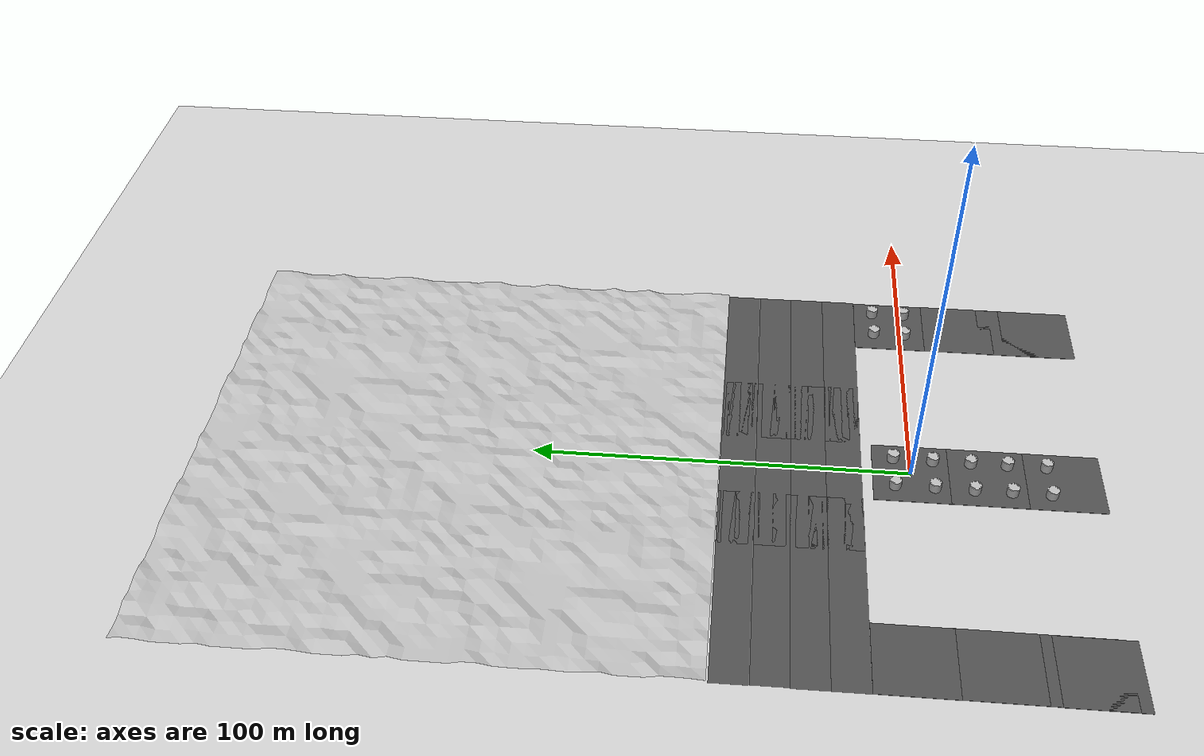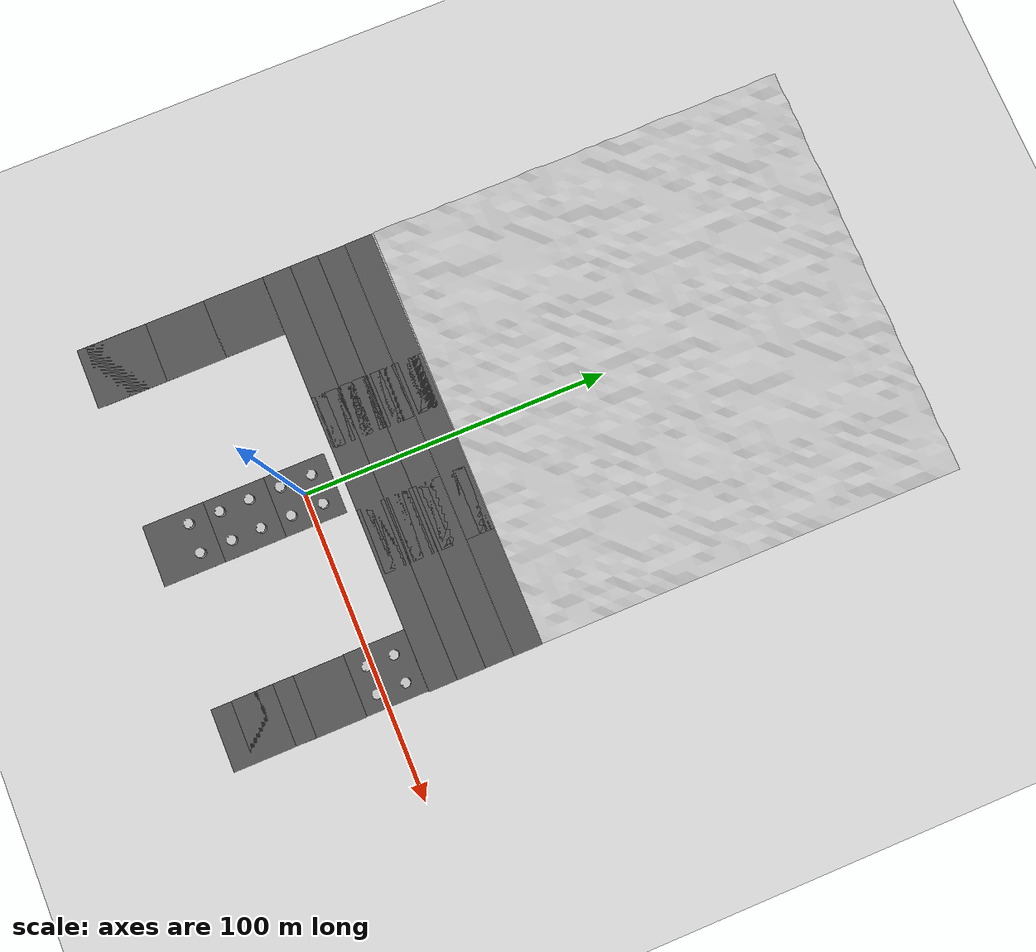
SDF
<sdf version="1.7">
 <world name="default">
  <light name="sun" type="directional">
   <pose>0 0 10 0 -0 0</pose>
   <diffuse>0.8 0.8 0.8 1</diffuse>
   <specular>0.2 0.2 0.2 1</specular>
   <attenuation>
    <range>1000</range>
    <constant>0.9</constant>
    <linear>0.01</linear>
    <quadratic>0.001</quadratic>
   </attenuation>
   <direction>-0.5 0.1 -0.9</direction>
   <spot><inner_angle>0</inner_angle><outer_angle>0</outer_angle><falloff>0</falloff></spot>
  </light>
  <model name="ground_plane">
   <static>1</static>
   <link name="link">
    <collision name="collision">
     <geometry><plane><normal>0 0 1</normal><size>100 100</size></plane></geometry>
     <surface><friction><ode><mu>100</mu><mu2>50</mu2></ode></friction></surface>
    </collision>
    <visual name="visual">
     <cast_shadows>0</cast_shadows>
     <geometry><plane><normal>0 0 1</normal><size>100 100</size></plane></geometry>
     <material>
      <script><uri>file://media/materials/scripts/gazebo.material</uri><name>Gazebo/Grey</name></script>
     </material>
    </visual>
   </link>
  </model>
  <physics name="default_physics" default="0" type="ode">
   <ode>
    <solver>
     <type>quick</type>
     <iters>10</iters>
     <sor>1.3</sor>
     <use_dynamic_moi_rescaling>0</use_dynamic_moi_rescaling>
    </solver>
    <constraints>
     <cfm>0</cfm>
     <erp>0.2</erp>
     <contact_max_correcting_vel>100</contact_max_correcting_vel>
     <contact_surface_layer>0.001</contact_surface_layer>
    </constraints>
   </ode>
   <max_step_size>0.004</max_step_size>
   <real_time_factor>1</real_time_factor>
   <real_time_update_rate>250</real_time_update_rate>
  </physics>
  <gravity>0 0 -9.8066</gravity>
  <magnetic_field>6e-06 2.3e-05 -4.2e-05</magnetic_field>
  <atmosphere type="adiabatic"/>
  <scene><ambient>0.4 0.4 0.4 1</ambient><background>0.7 0.7 0.7 1</background><shadows>1</shadows></scene>
  <audio><device>default</device></audio>
  <spherical_coordinates>
   <surface_model>EARTH_WGS84</surface_model>
   <latitude_deg>0</latitude_deg>
   <longitude_deg>0</longitude_deg>
   <elevation>0</elevation>
   <heading_deg>0</heading_deg>
  </spherical_coordinates>
  <model name="water1">
   <static>1</static>
   <link name="water1">
    <collision name="water1"><geometry><mesh><uri>model://water1/model.dae</uri></mesh></geometry></collision>
    <visual name="water1">
     <cast_shadows>0</cast_shadows>
     <geometry><mesh><uri>model://water1/model.dae</uri></mesh></geometry>
     <material><script><uri>model://water1/model.dae</uri><name>water1</name></script></material>
    </visual>
   </link>
   <pose>43.5698 142.488 0 0 -0 0</pose>
  </model>
  <model name="road2_0">
   <static>1</static>
   <link name="road2">
    <collision name="road2"><geometry><mesh><uri>model://road2/model.dae</uri></mesh></geometry></collision>
    <visual name="road2">
     <cast_shadows>0</cast_shadows>
     <geometry><mesh><uri>model://road2/model.dae</uri></mesh></geometry>
     <material><script><uri>model://road2/model.dae</uri><name>road2</name></script></material>
    </visual>
   </link>
   <pose>-19.2991 38.814 0 0 0 -1.56669</pose>
  </model>
  <model name="road2_0_clone">
   <static>1</static>
   <link name="road2">
    <collision name="road2"><geometry><mesh><uri>model://road2/model.dae</uri></mesh></geometry></collision>
    <visual name="road2">
     <cast_shadows>0</cast_shadows>
     <geometry><mesh><uri>model://road2/model.dae</uri></mesh></geometry>
     <material><script><uri>model://road2/model.dae</uri><name>road2</name></script></material>
    </visual>
   </link>
   <pose>61.1403 39.1675 0 0 0 -1.56669</pose>
  </model>
  <model name="road2_0_clone_0">
   <static>1</static>
   <link name="road2">
    <collision name="road2"><geometry><mesh><uri>model://road2/model.dae</uri></mesh></geometry></collision>
    <visual name="road2">
     <cast_shadows>0</cast_shadows>
     <geometry><mesh><uri>model://road2/model.dae</uri></mesh></geometry>
     <material><script><uri>model://road2/model.dae</uri><name>road2</name></script></material>
    </visual>
   </link>
   <pose>61.1403 29.741 0 0 0 -1.56669</pose>
  </model>
  <model name="road2_0_clone_1">
   <static>1</static>
   <link name="road2">
    <collision name="road2"><geometry><mesh><uri>model://road2/model.dae</uri></mesh></geometry></collision>
    <visual name="road2">
     <cast_shadows>0</cast_shadows>
     <geometry><mesh><uri>model://road2/model.dae</uri></mesh></geometry>
     <material><script><uri>model://road2/model.dae</uri><name>road2</name></script></material>
    </visual>
   </link>
   <pose>61.2226 20.4666 0 0 0 -1.56669</pose>
  </model>
  <model name="road2_0_clone_2">
   <static>1</static>
   <link name="road2">
    <collision name="road2"><geometry><mesh><uri>model://road2/model.dae</uri></mesh></geometry></collision>
    <visual name="road2">
     <cast_shadows>0</cast_shadows>
     <geometry><mesh><uri>model://road2/model.dae</uri></mesh></geometry>
     <material><script><uri>model://road2/model.dae</uri><name>road2</name></script></material>
    </visual>
   </link>
   <pose>61.2226 11.2025 0 0 0 -1.56669</pose>
  </model>
  <model name="road2_0_clone_3">
   <static>1</static>
   <link name="road2">
    <collision name="road2"><geometry><mesh><uri>model://road2/model.dae</uri></mesh></geometry></collision>
    <visual name="road2">
     <cast_shadows>0</cast_shadows>
     <geometry><mesh><uri>model://road2/model.dae</uri></mesh></geometry>
     <material><script><uri>model://road2/model.dae</uri><name>road2</name></script></material>
    </visual>
   </link>
   <pose>-19.1407 29.3577 0 0 0 -1.56669</pose>
  </model>
  <model name="road2_0_clone_4">
   <static>1</static>
   <link name="road2">
    <collision name="road2"><geometry><mesh><uri>model://road2/model.dae</uri></mesh></geometry></collision>
    <visual name="road2">
     <cast_shadows>0</cast_shadows>
     <geometry><mesh><uri>model://road2/model.dae</uri></mesh></geometry>
     <material><script><uri>model://road2/model.dae</uri><name>road2</name></script></material>
    </visual>
   </link>
   <pose>-19.2932 20.1948 0 0 0 -1.56669</pose>
  </model>
  <model name="road2_0_clone_5">
   <static>1</static>
   <link name="road2">
    <collision name="road2"><geometry><mesh><uri>model://road2/model.dae</uri></mesh></geometry></collision>
    <visual name="road2">
     <cast_shadows>0</cast_shadows>
     <geometry><mesh><uri>model://road2/model.dae</uri></mesh></geometry>
     <material><script><uri>model://road2/model.dae</uri><name>road2</name></script></material>
    </visual>
   </link>
   <pose>-19.2545 10.8593 0 0 0 -1.56669</pose>
  </model>
  <model name="asphalt_plane_clone_0">
   <static>1</static>
   <link name="link">
    <collision name="collision"><geometry><box><size>20 20 0.1</size></box></geometry></collision>
    <visual name="visual">
     <cast_shadows>0</cast_shadows>
     <geometry><box><size>20 20 0.1</size></box></geometry>
     <material>
      <script>
       <uri>model://asphalt_plane/materials/scripts</uri>
       <uri>model://asphalt_plane/materials/textures</uri>
       <name>vrc/asphalt</name>
      </script>
     </material>
    </visual>
   </link>
   <pose>-0.01623 -39.9837 0 0 -0 0</pose>
  </model>
  <model name="asphalt_plane_clone">
   <static>1</static>
   <link name="link">
    <collision name="collision"><geometry><box><size>20 20 0.1</size></box></geometry></collision>
    <visual name="visual">
     <cast_shadows>0</cast_shadows>
     <geometry><box><size>20 20 0.1</size></box></geometry>
     <material>
      <script>
       <uri>model://asphalt_plane/materials/scripts</uri>
       <uri>model://asphalt_plane/materials/textures</uri>
       <name>vrc/asphalt</name>
      </script>
     </material>
    </visual>
   </link>
   <pose>-0.015522 -20.052 0 0 -0 0</pose>
  </model>
  <model name="asphalt_plane_clone_clone">
   <static>1</static>
   <link name="link">
    <collision name="collision"><geometry><box><size>20 20 0.1</size></box></geometry></collision>
    <visual name="visual">
     <cast_shadows>0</cast_shadows>
     <geometry><box><size>20 20 0.1</size></box></geometry>
     <material>
      <script>
       <uri>model://asphalt_plane/materials/scripts</uri>
       <uri>model://asphalt_plane/materials/textures</uri>
       <name>vrc/asphalt</name>
      </script>
     </material>
    </visual>
   </link>
   <pose>-0.043128 -0.064889 0 0 -0 0</pose>
  </model>
  <model name="oiltank">
   <static>1</static>
   <link name="oiltank">
    <collision name="oiltank"><geometry><mesh><uri>model://oiltank/model.dae</uri></mesh></geometry></collision>
    <visual name="oiltank">
     <cast_shadows>0</cast_shadows>
     <geometry><mesh><uri>model://oiltank/model.dae</uri></mesh></geometry>
     <material><script><uri>model://oiltank/model.dae</uri><name>oiltank</name></script></material>
    </visual>
   </link>
   <pose>-9.47907 0.017508 0 0 -0 0</pose>
  </model>
  <model name="oiltank_clone">
   <static>1</static>
   <link name="oiltank">
    <collision name="oiltank"><geometry><mesh><uri>model://oiltank/model.dae</uri></mesh></geometry></collision>
    <visual name="oiltank">
     <cast_shadows>0</cast_shadows>
     <geometry><mesh><uri>model://oiltank/model.dae</uri></mesh></geometry>
     <material><script><uri>model://oiltank/model.dae</uri><name>oiltank</name></script></material>
    </visual>
   </link>
   <pose>0.280875 0.171677 0 0 -0 0</pose>
  </model>
  <model name="oiltank_clone_0">
   <static>1</static>
   <link name="oiltank">
    <collision name="oiltank"><geometry><mesh><uri>model://oiltank/model.dae</uri></mesh></geometry></collision>
    <visual name="oiltank">
     <cast_shadows>0</cast_shadows>
     <geometry><mesh><uri>model://oiltank/model.dae</uri></mesh></geometry>
     <material><script><uri>model://oiltank/model.dae</uri><name>oiltank</name></script></material>
    </visual>
   </link>
   <pose>0.007959 -10.2385 0 0 -0 0</pose>
  </model>
  <model name="oiltank_clone_1">
   <static>1</static>
   <link name="oiltank">
    <collision name="oiltank"><geometry><mesh><uri>model://oiltank/model.dae</uri></mesh></geometry></collision>
    <visual name="oiltank">
     <cast_shadows>0</cast_shadows>
     <geometry><mesh><uri>model://oiltank/model.dae</uri></mesh></geometry>
     <material><script><uri>model://oiltank/model.dae</uri><name>oiltank</name></script></material>
    </visual>
   </link>
   <pose>-9.54846 -10.2458 0 0 -0 0</pose>
  </model>
  <model name="oiltank_clone_2">
   <static>1</static>
   <link name="oiltank">
    <collision name="oiltank"><geometry><mesh><uri>model://oiltank/model.dae</uri></mesh></geometry></collision>
    <visual name="oiltank">
     <cast_shadows>0</cast_shadows>
     <geometry><mesh><uri>model://oiltank/model.dae</uri></mesh></geometry>
     <material><script><uri>model://oiltank/model.dae</uri><name>oiltank</name></script></material>
    </visual>
   </link>
   <pose>0.027538 -20.1884 0 0 -0 0</pose>
  </model>
  <model name="oiltank_clone_3">
   <static>1</static>
   <link name="oiltank">
    <collision name="oiltank"><geometry><mesh><uri>model://oiltank/model.dae</uri></mesh></geometry></collision>
    <visual name="oiltank">
     <cast_shadows>0</cast_shadows>
     <geometry><mesh><uri>model://oiltank/model.dae</uri></mesh></geometry>
     <material><script><uri>model://oiltank/model.dae</uri><name>oiltank</name></script></material>
    </visual>
   </link>
   <pose>-9.64878 -20.4583 0 0 -0 0</pose>
  </model>
  <model name="oiltank_clone_4">
   <static>1</static>
   <link name="oiltank">
    <collision name="oiltank"><geometry><mesh><uri>model://oiltank/model.dae</uri></mesh></geometry></collision>
    <visual name="oiltank">
     <cast_shadows>0</cast_shadows>
     <geometry><mesh><uri>model://oiltank/model.dae</uri></mesh></geometry>
     <material><script><uri>model://oiltank/model.dae</uri><name>oiltank</name></script></material>
    </visual>
   </link>
   <pose>0.073681 -29.7826 0 0 -0 0</pose>
  </model>
  <model name="oiltank_clone_5">
   <static>1</static>
   <link name="oiltank">
    <collision name="oiltank"><geometry><mesh><uri>model://oiltank/model.dae</uri></mesh></geometry></collision>
    <visual name="oiltank">
     <cast_shadows>0</cast_shadows>
     <geometry><mesh><uri>model://oiltank/model.dae</uri></mesh></geometry>
     <material><script><uri>model://oiltank/model.dae</uri><name>oiltank</name></script></material>
    </visual>
   </link>
   <pose>-9.56406 -30.13 0 0 -0 0</pose>
  </model>
  <model name="oiltank_clone_6">
   <static>1</static>
   <link name="oiltank">
    <collision name="oiltank"><geometry><mesh><uri>model://oiltank/model.dae</uri></mesh></geometry></collision>
    <visual name="oiltank">
     <cast_shadows>0</cast_shadows>
     <geometry><mesh><uri>model://oiltank/model.dae</uri></mesh></geometry>
     <material><script><uri>model://oiltank/model.dae</uri><name>oiltank</name></script></material>
    </visual>
   </link>
   <pose>0.104442 -40.0256 0 0 -0 0</pose>
  </model>
  <model name="oiltank_clone_7">
   <static>1</static>
   <link name="oiltank">
    <collision name="oiltank"><geometry><mesh><uri>model://oiltank/model.dae</uri></mesh></geometry></collision>
    <visual name="oiltank">
     <cast_shadows>0</cast_shadows>
     <geometry><mesh><uri>model://oiltank/model.dae</uri></mesh></geometry>
     <material><script><uri>model://oiltank/model.dae</uri><name>oiltank</name></script></material>
    </visual>
   </link>
   <pose>-9.68751 -40.2562 0 0 -0 0</pose>
  </model>
  <model name="asphalt_plane_0">
   <static>1</static>
   <link name="link">
    <collision name="collision"><geometry><box><size>20 20 0.1</size></box></geometry></collision>
    <visual name="visual">
     <cast_shadows>0</cast_shadows>
     <geometry><box><size>20 20 0.1</size></box></geometry>
     <material>
      <script>
       <uri>model://asphalt_plane/materials/scripts</uri>
       <uri>model://asphalt_plane/materials/textures</uri>
       <name>vrc/asphalt</name>
      </script>
     </material>
    </visual>
   </link>
   <pose>59.9295 2.98482 0 0 -0 0</pose>
  </model>
  <model name="asphalt_plane_0_clone">
   <static>1</static>
   <link name="link">
    <collision name="collision"><geometry><box><size>20 20 0.1</size></box></geometry></collision>
    <visual name="visual">
     <cast_shadows>0</cast_shadows>
     <geometry><box><size>20 20 0.1</size></box></geometry>
     <material>
      <script>
       <uri>model://asphalt_plane/materials/scripts</uri>
       <uri>model://asphalt_plane/materials/textures</uri>
       <name>vrc/asphalt</name>
      </script>
     </material>
    </visual>
   </link>
   <pose>60.0489 -16.9037 0 0 -0 0</pose>
  </model>
  <model name="asphalt_plane_0_clone_0">
   <static>1</static>
   <link name="link">
    <collision name="collision"><geometry><box><size>20 20 0.1</size></box></geometry></collision>
    <visual name="visual">
     <cast_shadows>0</cast_shadows>
     <geometry><box><size>20 20 0.1</size></box></geometry>
     <material>
      <script>
       <uri>model://asphalt_plane/materials/scripts</uri>
       <uri>model://asphalt_plane/materials/textures</uri>
       <name>vrc/asphalt</name>
      </script>
     </material>
    </visual>
   </link>
   <pose>60.0175 -39.9321 0 0 -0 0</pose>
  </model>
  <model name="asphalt_plane_0_clone_1">
   <static>1</static>
   <link name="link">
    <collision name="collision"><geometry><box><size>20 20 0.1</size></box></geometry></collision>
    <visual name="visual">
     <cast_shadows>0</cast_shadows>
     <geometry><box><size>20 20 0.1</size></box></geometry>
     <material>
      <script>
       <uri>model://asphalt_plane/materials/scripts</uri>
       <uri>model://asphalt_plane/materials/textures</uri>
       <name>vrc/asphalt</name>
      </script>
     </material>
    </visual>
   </link>
   <pose>59.9736 -33.3473 0 0 -0 0</pose>
  </model>
  <model name="asphalt_plane_0_clone_2">
   <static>1</static>
   <link name="link">
    <collision name="collision"><geometry><box><size>20 20 0.1</size></box></geometry></collision>
    <visual name="visual">
     <cast_shadows>0</cast_shadows>
     <geometry><box><size>20 20 0.1</size></box></geometry>
     <material>
      <script>
       <uri>model://asphalt_plane/materials/scripts</uri>
       <uri>model://asphalt_plane/materials/textures</uri>
       <name>vrc/asphalt</name>
      </script>
     </material>
    </visual>
   </link>
   <pose>-59.9627 2.41846 0 0 -0 0</pose>
  </model>
  <model name="asphalt_plane_0_clone_3">
   <static>1</static>
   <link name="link">
    <collision name="collision"><geometry><box><size>20 20 0.1</size></box></geometry></collision>
    <visual name="visual">
     <cast_shadows>0</cast_shadows>
     <geometry><box><size>20 20 0.1</size></box></geometry>
     <material>
      <script>
       <uri>model://asphalt_plane/materials/scripts</uri>
       <uri>model://asphalt_plane/materials/textures</uri>
       <name>vrc/asphalt</name>
      </script>
     </material>
    </visual>
   </link>
   <pose>-59.8974 -17.1547 0 0 -0 0</pose>
  </model>
  <model name="asphalt_plane_0_clone_4">
   <static>1</static>
   <link name="link">
    <collision name="collision"><geometry><box><size>20 20 0.1</size></box></geometry></collision>
    <visual name="visual">
     <cast_shadows>0</cast_shadows>
     <geometry><box><size>20 20 0.1</size></box></geometry>
     <material>
      <script>
       <uri>model://asphalt_plane/materials/scripts</uri>
       <uri>model://asphalt_plane/materials/textures</uri>
       <name>vrc/asphalt</name>
      </script>
     </material>
    </visual>
   </link>
   <pose>-59.8974 -37.0484 0 0 -0 0</pose>
  </model>
  <model name="asphalt_plane_0_clone_5">
   <static>1</static>
   <link name="link">
    <collision name="collision"><geometry><box><size>20 20 0.1</size></box></geometry></collision>
    <visual name="visual">
     <cast_shadows>0</cast_shadows>
     <geometry><box><size>20 20 0.1</size></box></geometry>
     <material>
      <script>
       <uri>model://asphalt_plane/materials/scripts</uri>
       <uri>model://asphalt_plane/materials/textures</uri>
       <name>vrc/asphalt</name>
      </script>
     </material>
    </visual>
   </link>
   <pose>-59.9627 -39.9366 0 0 -0 0</pose>
  </model>
  <model name="road2_0_clone_6">
   <static>1</static>
   <link name="road2">
    <collision name="road2"><geometry><mesh><uri>model://road2/model.dae</uri></mesh></geometry></collision>
    <visual name="road2">
     <cast_shadows>0</cast_shadows>
     <geometry><mesh><uri>model://road2/model.dae</uri></mesh></geometry>
     <material><script><uri>model://road2/model.dae</uri><name>road2</name></script></material>
    </visual>
   </link>
   <pose>22.7898 38.9993 0 0 0 -1.56669</pose>
  </model>
  <model name="road2_0_clone_7">
   <static>1</static>
   <link name="road2">
    <collision name="road2"><geometry><mesh><uri>model://road2/model.dae</uri></mesh></geometry></collision>
    <visual name="road2">
     <cast_shadows>0</cast_shadows>
     <geometry><mesh><uri>model://road2/model.dae</uri></mesh></geometry>
     <material><script><uri>model://road2/model.dae</uri><name>road2</name></script></material>
    </visual>
   </link>
   <pose>22.8493 29.5447 0 0 0 -1.56669</pose>
  </model>
  <model name="road2_0_clone_8">
   <static>1</static>
   <link name="road2">
    <collision name="road2"><geometry><mesh><uri>model://road2/model.dae</uri></mesh></geometry></collision>
    <visual name="road2">
     <cast_shadows>0</cast_shadows>
     <geometry><mesh><uri>model://road2/model.dae</uri></mesh></geometry>
     <material><script><uri>model://road2/model.dae</uri><name>road2</name></script></material>
    </visual>
   </link>
   <pose>22.8168 20.3107 0 0 0 -1.56669</pose>
  </model>
  <model name="road2_0_clone_9">
   <static>1</static>
   <link name="road2">
    <collision name="road2"><geometry><mesh><uri>model://road2/model.dae</uri></mesh></geometry></collision>
    <visual name="road2">
     <cast_shadows>0</cast_shadows>
     <geometry><mesh><uri>model://road2/model.dae</uri></mesh></geometry>
     <material><script><uri>model://road2/model.dae</uri><name>road2</name></script></material>
    </visual>
   </link>
   <pose>23.0199 11.0692 0 0 0 -1.56669</pose>
  </model>
  <model name="oiltank_clone_clone">
   <static>1</static>
   <link name="oiltank">
    <collision name="oiltank"><geometry><mesh><uri>model://oiltank/model.dae</uri></mesh></geometry></collision>
    <visual name="oiltank">
     <cast_shadows>0</cast_shadows>
     <geometry><mesh><uri>model://oiltank/model.dae</uri></mesh></geometry>
     <material><script><uri>model://oiltank/model.dae</uri><name>oiltank</name></script></material>
    </visual>
   </link>
   <pose>51.3308 3.2851 0 0 -0 0</pose>
  </model>
  <model name="oiltank_clone_clone_0">
   <static>1</static>
   <link name="oiltank">
    <collision name="oiltank"><geometry><mesh><uri>model://oiltank/model.dae</uri></mesh></geometry></collision>
    <visual name="oiltank">
     <cast_shadows>0</cast_shadows>
     <geometry><mesh><uri>model://oiltank/model.dae</uri></mesh></geometry>
     <material><script><uri>model://oiltank/model.dae</uri><name>oiltank</name></script></material>
    </visual>
   </link>
   <pose>60.4126 3.50714 0 0 -0 0</pose>
  </model>
  <model name="oiltank_clone_clone_1">
   <static>1</static>
   <link name="oiltank">
    <collision name="oiltank"><geometry><mesh><uri>model://oiltank/model.dae</uri></mesh></geometry></collision>
    <visual name="oiltank">
     <cast_shadows>0</cast_shadows>
     <geometry><mesh><uri>model://oiltank/model.dae</uri></mesh></geometry>
     <material><script><uri>model://oiltank/model.dae</uri><name>oiltank</name></script></material>
    </visual>
   </link>
   <pose>60.322 -5.70039 0 0 -0 0</pose>
  </model>
  <model name="oiltank_clone_clone_2">
   <static>1</static>
   <link name="oiltank">
    <collision name="oiltank"><geometry><mesh><uri>model://oiltank/model.dae</uri></mesh></geometry></collision>
    <visual name="oiltank">
     <cast_shadows>0</cast_shadows>
     <geometry><mesh><uri>model://oiltank/model.dae</uri></mesh></geometry>
     <material><script><uri>model://oiltank/model.dae</uri><name>oiltank</name></script></material>
    </visual>
   </link>
   <pose>51.3529 -5.6145 0 0 -0 0</pose>
  </model>
 </world>
</sdf>
